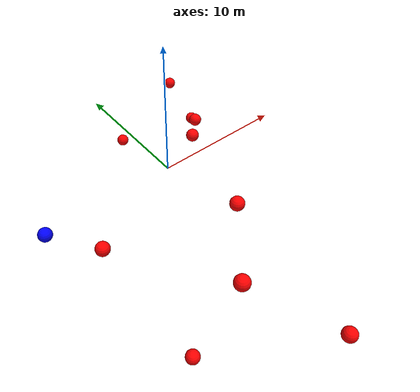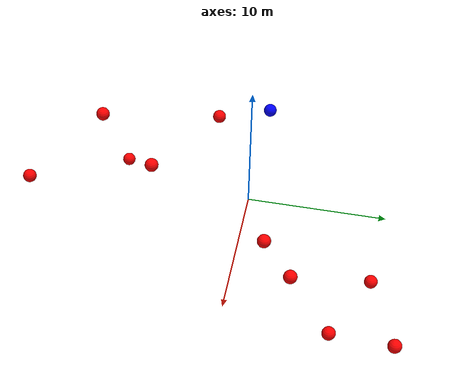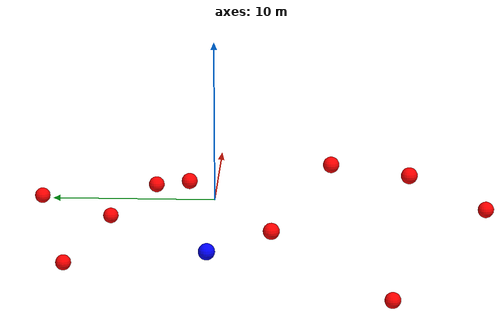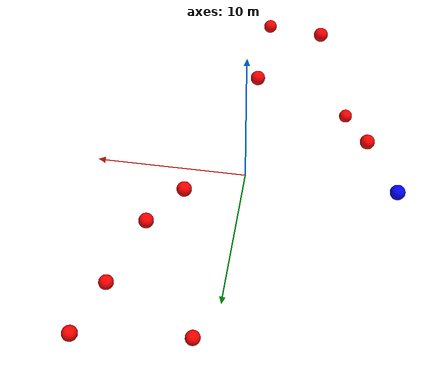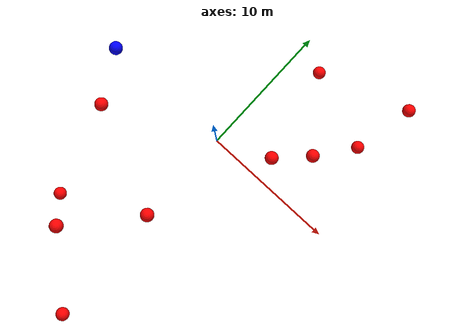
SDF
<?xml version="1.0" ?>
<sdf version="1.8">
    <world name="3d_world">
        <physics name="1ms" type="ode">
            <max_step_size>0.001</max_step_size>
            <real_time_factor>1.0</real_time_factor>
            <real_time_update_rate>1000.0</real_time_update_rate>
        </physics>
        <gravity>0 0 0</gravity>

        <plugin
            filename="gz-sim-physics-system"
            name="gz::sim::v8::systems::Physics">
        </plugin>
        <plugin
            filename="libignition-gazebo-user-commands-system.so"
            name="ignition::gazebo::systems::UserCommands">
        </plugin>
        <plugin
            filename="gz-sim-scene-broadcaster-system"
            name="gz::sim::systems::SceneBroadcaster">
        </plugin>
        <plugin
            filename="gz-sim-sensors-system"
            name="gz::sim::systems::Sensors">
            <render_engine>ogre2</render_engine>
        </plugin>

        <light type="directional" name="sun">
            <cast_shadows>true</cast_shadows>
            <pose>0 0 10 0 0 0</pose>
            <diffuse>0.8 0.8 0.8 1</diffuse>
            <specular>0.2 0.2 0.2 1</specular>
            <attenuation>
                <range>1000</range>
                <constant>0.9</constant>
                <linear>0.01</linear>
                <quadratic>0.001</quadratic>
            </attenuation>
            <direction>-0.5 0.1 -0.9</direction>
        </light>

        <!-- AGENTE -->
        <model name='agente' canonical_link='chassis'>
            <pose relative_to='world'>-10.0 0 0.0 0 0 0</pose>
            <link name='chassis'>
                <pose relative_to='__model__'>0.0 0 0.0 0 0 0</pose>
                <inertial>
                    <mass>1.14395</mass>
                    <inertia>
                        <ixx>0.095329</ixx>
                        <ixy>0</ixy>
                        <ixz>0</ixz>
                        <iyy>0.381317</iyy>
                        <iyz>0</iyz>
                        <izz>0.476646</izz>
                    </inertia>
                </inertial>
                <visual name='visual'>
                    <geometry>
                        <sphere>
                            <radius>0.5</radius>
                        </sphere>
                    </geometry>
                    <material>
                        <ambient>0.0 0.0 1.0 1</ambient>
                        <diffuse>0.0 0.0 1.0 1</diffuse>
                        <specular>0.0 0.0 1.0 1</specular>
                    </material>
                </visual>
                <collision name='collision'>
                    <geometry>
                        <sphere>
                            <radius>0.5</radius>
                        </sphere>
                    </geometry>
                </collision>
                <enable_gravity>false</enable_gravity>
            </link>

            <link name='lidar_link'>
                <pose relative_to='chassis'>0.0 0 0.1 0 0 0</pose>
                <inertial>
                    <mass>0.1</mass>
                    <inertia>
                        <ixx>0.000166667</ixx>
                        <iyy>0.000166667</iyy>
                        <izz>0.000166667</izz>
                    </inertia>
                </inertial>
                <collision name='collision'>
                    <geometry>
                        <cylinder>
                            <radius>0.05</radius>
                            <length>0.1</length>
                        </cylinder>
                    </geometry>
                </collision>
                <visual name='visual'>
                    <geometry>
                        <cylinder>
                            <radius>0.05</radius>
                            <length>0.1</length>
                        </cylinder>
                    </geometry>
                    <material>
                        <ambient>0.0 1.0 0.0 1</ambient>
                        <diffuse>0.0 1.0 0.0 1</diffuse>
                        <specular>0.0 1.0 0.0 1</specular>
                    </material>
                </visual>
                <sensor name="lidar" type="gpu_lidar">
                    <topic>scan</topic>
                    <update_rate>10</update_rate>
                    <lidar>
                        <scan>
                            <horizontal>
                                <samples>5000</samples>
                                <resolution>1</resolution>
                                <min_angle>-3.14159</min_angle>
                                <max_angle>3.14159</max_angle>
                            </horizontal>
                        </scan>
                        <range>
                            <min>0.1</min>
                            <max>10.0</max>
                            <resolution>0.01</resolution>
                        </range>
                    </lidar>
                    <visualize>true</visualize>
                    <always_on>true</always_on>
                    <update_rate>10</update_rate>
                    <pose_frame>lidar</pose_frame>
                </sensor>
                <enable_gravity>false</enable_gravity>
            </link>

            <joint name="lidar_joint" type="fixed">
                <parent>chassis</parent>
                <child>lidar_link</child>
            </joint>

            <plugin
                filename="ignition-gazebo-joint-state-publisher-system"
                name="ignition::gazebo::systems::JointStatePublisher">
            </plugin>
            <plugin
                filename="ignition-gazebo-odometry-publisher-system"
                name="ignition::gazebo::systems::OdometryPublisher">
                <dimensions>3</dimensions>
            </plugin>
            <plugin
                filename="ignition-gazebo-velocity-control-system"
                name="ignition::gazebo::systems::VelocityControl">
                <initial_linear>0.0 0 0</initial_linear>
                <initial_angular>0 0 0.0</initial_angular>
            </plugin>
            <plugin
                filename="libignition-gazebo-pose-publisher-system.so"
                name="ignition::gazebo::systems::PosePublisher">
                <topic>/agente/pose</topic>
                <frame_id>agente</frame_id>
                <update_rate>30</update_rate>
            </plugin>
        </model>

        <!-- OBSTACLE 1 -->
        <model name='obstacle_1' canonical_link='obstacle'>
            <static>false</static>
            <pose relative_to='world'>5.89 4.01 -0.89 0 0 0</pose>
            <link name='obstacle'>
                <pose relative_to='__model__'>0.0 0 0.0 0 0 0</pose>
                <visual name='visual'>
                    <geometry>
                        <sphere>
                            <radius>0.50</radius>
                        </sphere>
                    </geometry>
                    <material>
                        <ambient>1.0 0.0 0.0 1</ambient>
                        <diffuse>1.0 0.0 0.0 1</diffuse>
                        <specular>1.0 0.0 0.0 1</specular>
                    </material>
                </visual>
                <collision name='collision'>
                    <geometry>
                        <sphere>
                            <radius>0.50</radius>
                        </sphere>
                    </geometry>
                </collision>
                <enable_gravity>false</enable_gravity>
            </link>

            <plugin
                filename="ignition-gazebo-velocity-control-system"
                name="ignition::gazebo::systems::VelocityControl">
                <initial_linear>-0.35 -0.72 0.16</initial_linear>
                <initial_angular>0 0 0</initial_angular>
            </plugin>

            <plugin
                filename="ignition-gazebo-odometry-publisher-system"
                name="ignition::gazebo::systems::OdometryPublisher">
                <dimensions>3</dimensions>
            </plugin>
        </model>

        <!-- OBSTACLE 2 -->
        <model name='obstacle_2' canonical_link='obstacle'>
            <static>false</static>
            <pose relative_to='world'>3.78 1.77 0.01 0 0 0</pose>
            <link name='obstacle'>
                <pose relative_to='__model__'>0.0 0 0.0 0 0 0</pose>
                <visual name='visual'>
                    <geometry>
                        <sphere>
                            <radius>0.50</radius>
                        </sphere>
                    </geometry>
                    <material>
                        <ambient>1.0 0.0 0.0 1</ambient>
                        <diffuse>1.0 0.0 0.0 1</diffuse>
                        <specular>1.0 0.0 0.0 1</specular>
                    </material>
                </visual>
                <collision name='collision'>
                    <geometry>
                        <sphere>
                            <radius>0.50</radius>
                        </sphere>
                    </geometry>
                </collision>
                <enable_gravity>false</enable_gravity>
            </link>

            <plugin
                filename="ignition-gazebo-velocity-control-system"
                name="ignition::gazebo::systems::VelocityControl">
                <initial_linear>0.09 -0.31 -0.00</initial_linear>
                <initial_angular>0 0 0</initial_angular>
            </plugin>

            <plugin
                filename="ignition-gazebo-odometry-publisher-system"
                name="ignition::gazebo::systems::OdometryPublisher">
                <dimensions>3</dimensions>
            </plugin>
        </model>

        <!-- OBSTACLE 3 -->
        <model name='obstacle_3' canonical_link='obstacle'>
            <static>false</static>
            <pose relative_to='world'>0.29 -16.77 -0.58 0 0 0</pose>
            <link name='obstacle'>
                <pose relative_to='__model__'>0.0 0 0.0 0 0 0</pose>
                <visual name='visual'>
                    <geometry>
                        <sphere>
                            <radius>0.50</radius>
                        </sphere>
                    </geometry>
                    <material>
                        <ambient>1.0 0.0 0.0 1</ambient>
                        <diffuse>1.0 0.0 0.0 1</diffuse>
                        <specular>1.0 0.0 0.0 1</specular>
                    </material>
                </visual>
                <collision name='collision'>
                    <geometry>
                        <sphere>
                            <radius>0.50</radius>
                        </sphere>
                    </geometry>
                </collision>
                <enable_gravity>false</enable_gravity>
            </link>

            <plugin
                filename="ignition-gazebo-velocity-control-system"
                name="ignition::gazebo::systems::VelocityControl">
                <initial_linear>-0.58 1.91 0.07</initial_linear>
                <initial_angular>0 0 0</initial_angular>
            </plugin>

            <plugin
                filename="ignition-gazebo-odometry-publisher-system"
                name="ignition::gazebo::systems::OdometryPublisher">
                <dimensions>3</dimensions>
            </plugin>
        </model>

        <!-- OBSTACLE 4 -->
        <model name='obstacle_4' canonical_link='obstacle'>
            <static>false</static>
            <pose relative_to='world'>8.99 11.72 -2.69 0 0 0</pose>
            <link name='obstacle'>
                <pose relative_to='__model__'>0.0 0 0.0 0 0 0</pose>
                <visual name='visual'>
                    <geometry>
                        <sphere>
                            <radius>0.50</radius>
                        </sphere>
                    </geometry>
                    <material>
                        <ambient>1.0 0.0 0.0 1</ambient>
                        <diffuse>1.0 0.0 0.0 1</diffuse>
                        <specular>1.0 0.0 0.0 1</specular>
                    </material>
                </visual>
                <collision name='collision'>
                    <geometry>
                        <sphere>
                            <radius>0.50</radius>
                        </sphere>
                    </geometry>
                </collision>
                <enable_gravity>false</enable_gravity>
            </link>

            <plugin
                filename="ignition-gazebo-velocity-control-system"
                name="ignition::gazebo::systems::VelocityControl">
                <initial_linear>-1.31 -1.48 0.34</initial_linear>
                <initial_angular>0 0 0</initial_angular>
            </plugin>

            <plugin
                filename="ignition-gazebo-odometry-publisher-system"
                name="ignition::gazebo::systems::OdometryPublisher">
                <dimensions>3</dimensions>
            </plugin>
        </model>

        <!-- OBSTACLE 5 -->
        <model name='obstacle_5' canonical_link='obstacle'>
            <static>false</static>
            <pose relative_to='world'>-7.84 -3.72 0.58 0 0 0</pose>
            <link name='obstacle'>
                <pose relative_to='__model__'>0.0 0 0.0 0 0 0</pose>
                <visual name='visual'>
                    <geometry>
                        <sphere>
                            <radius>0.50</radius>
                        </sphere>
                    </geometry>
                    <material>
                        <ambient>1.0 0.0 0.0 1</ambient>
                        <diffuse>1.0 0.0 0.0 1</diffuse>
                        <specular>1.0 0.0 0.0 1</specular>
                    </material>
                </visual>
                <collision name='collision'>
                    <geometry>
                        <sphere>
                            <radius>0.50</radius>
                        </sphere>
                    </geometry>
                </collision>
                <enable_gravity>false</enable_gravity>
            </link>

            <plugin
                filename="ignition-gazebo-velocity-control-system"
                name="ignition::gazebo::systems::VelocityControl">
                <initial_linear>1.93 0.52 -0.08</initial_linear>
                <initial_angular>0 0 0</initial_angular>
            </plugin>

            <plugin
                filename="ignition-gazebo-odometry-publisher-system"
                name="ignition::gazebo::systems::OdometryPublisher">
                <dimensions>3</dimensions>
            </plugin>
        </model>

        <!-- OBSTACLE 6 -->
        <model name='obstacle_6' canonical_link='obstacle'>
            <static>false</static>
            <pose relative_to='world'>8.06 7.19 -3.73 0 0 0</pose>
            <link name='obstacle'>
                <pose relative_to='__model__'>0.0 0 0.0 0 0 0</pose>
                <visual name='visual'>
                    <geometry>
                        <sphere>
                            <radius>0.50</radius>
                        </sphere>
                    </geometry>
                    <material>
                        <ambient>1.0 0.0 0.0 1</ambient>
                        <diffuse>1.0 0.0 0.0 1</diffuse>
                        <specular>1.0 0.0 0.0 1</specular>
                    </material>
                </visual>
                <collision name='collision'>
                    <geometry>
                        <sphere>
                            <radius>0.50</radius>
                        </sphere>
                    </geometry>
                </collision>
                <enable_gravity>false</enable_gravity>
            </link>

            <plugin
                filename="ignition-gazebo-velocity-control-system"
                name="ignition::gazebo::systems::VelocityControl">
                <initial_linear>-1.54 -1.13 0.59</initial_linear>
                <initial_angular>0 0 0</initial_angular>
            </plugin>

            <plugin
                filename="ignition-gazebo-odometry-publisher-system"
                name="ignition::gazebo::systems::OdometryPublisher">
                <dimensions>3</dimensions>
            </plugin>
        </model>

        <!-- OBSTACLE 7 -->
        <model name='obstacle_7' canonical_link='obstacle'>
            <static>false</static>
            <pose relative_to='world'>-6.46 -10.98 -4.16 0 0 0</pose>
            <link name='obstacle'>
                <pose relative_to='__model__'>0.0 0 0.0 0 0 0</pose>
                <visual name='visual'>
                    <geometry>
                        <sphere>
                            <radius>0.50</radius>
                        </sphere>
                    </geometry>
                    <material>
                        <ambient>1.0 0.0 0.0 1</ambient>
                        <diffuse>1.0 0.0 0.0 1</diffuse>
                        <specular>1.0 0.0 0.0 1</specular>
                    </material>
                </visual>
                <collision name='collision'>
                    <geometry>
                        <sphere>
                            <radius>0.50</radius>
                        </sphere>
                    </geometry>
                </collision>
                <enable_gravity>false</enable_gravity>
            </link>

            <plugin
                filename="ignition-gazebo-velocity-control-system"
                name="ignition::gazebo::systems::VelocityControl">
                <initial_linear>0.86 1.69 0.64</initial_linear>
                <initial_angular>0 0 0</initial_angular>
            </plugin>

            <plugin
                filename="ignition-gazebo-odometry-publisher-system"
                name="ignition::gazebo::systems::OdometryPublisher">
                <dimensions>3</dimensions>
            </plugin>
        </model>

        <!-- OBSTACLE 8 -->
        <model name='obstacle_8' canonical_link='obstacle'>
            <static>false</static>
            <pose relative_to='world'>-3.88 -11.90 2.87 0 0 0</pose>
            <link name='obstacle'>
                <pose relative_to='__model__'>0.0 0 0.0 0 0 0</pose>
                <visual name='visual'>
                    <geometry>
                        <sphere>
                            <radius>0.50</radius>
                        </sphere>
                    </geometry>
                    <material>
                        <ambient>1.0 0.0 0.0 1</ambient>
                        <diffuse>1.0 0.0 0.0 1</diffuse>
                        <specular>1.0 0.0 0.0 1</specular>
                    </material>
                </visual>
                <collision name='collision'>
                    <geometry>
                        <sphere>
                            <radius>0.50</radius>
                        </sphere>
                    </geometry>
                </collision>
                <enable_gravity>false</enable_gravity>
            </link>

            <plugin
                filename="ignition-gazebo-velocity-control-system"
                name="ignition::gazebo::systems::VelocityControl">
                <initial_linear>0.37 1.91 -0.46</initial_linear>
                <initial_angular>0 0 0</initial_angular>
            </plugin>

            <plugin
                filename="ignition-gazebo-odometry-publisher-system"
                name="ignition::gazebo::systems::OdometryPublisher">
                <dimensions>3</dimensions>
            </plugin>
        </model>

        <!-- OBSTACLE 9 -->
        <model name='obstacle_9' canonical_link='obstacle'>
            <static>false</static>
            <pose relative_to='world'>1.93 9.71 -4.88 0 0 0</pose>
            <link name='obstacle'>
                <pose relative_to='__model__'>0.0 0 0.0 0 0 0</pose>
                <visual name='visual'>
                    <geometry>
                        <sphere>
                            <radius>0.50</radius>
                        </sphere>
                    </geometry>
                    <material>
                        <ambient>1.0 0.0 0.0 1</ambient>
                        <diffuse>1.0 0.0 0.0 1</diffuse>
                        <specular>1.0 0.0 0.0 1</specular>
                    </material>
                </visual>
                <collision name='collision'>
                    <geometry>
                        <sphere>
                            <radius>0.50</radius>
                        </sphere>
                    </geometry>
                </collision>
                <enable_gravity>false</enable_gravity>
            </link>

            <plugin
                filename="ignition-gazebo-velocity-control-system"
                name="ignition::gazebo::systems::VelocityControl">
                <initial_linear>-0.35 -1.76 0.88</initial_linear>
                <initial_angular>0 0 0</initial_angular>
            </plugin>

            <plugin
                filename="ignition-gazebo-odometry-publisher-system"
                name="ignition::gazebo::systems::OdometryPublisher">
                <dimensions>3</dimensions>
            </plugin>
        </model>

        <!-- OBSTACLE 10 -->
        <model name='obstacle_10' canonical_link='obstacle'>
            <static>false</static>
            <pose relative_to='world'>0.14 -7.18 2.28 0 0 0</pose>
            <link name='obstacle'>
                <pose relative_to='__model__'>0.0 0 0.0 0 0 0</pose>
                <visual name='visual'>
                    <geometry>
                        <sphere>
                            <radius>0.50</radius>
                        </sphere>
                    </geometry>
                    <material>
                        <ambient>1.0 0.0 0.0 1</ambient>
                        <diffuse>1.0 0.0 0.0 1</diffuse>
                        <specular>1.0 0.0 0.0 1</specular>
                    </material>
                </visual>
                <collision name='collision'>
                    <geometry>
                        <sphere>
                            <radius>0.50</radius>
                        </sphere>
                    </geometry>
                </collision>
                <enable_gravity>false</enable_gravity>
            </link>

            <plugin
                filename="ignition-gazebo-velocity-control-system"
                name="ignition::gazebo::systems::VelocityControl">
                <initial_linear>0.99 1.07 -0.34</initial_linear>
                <initial_angular>0 0 0</initial_angular>
            </plugin>

            <plugin
                filename="ignition-gazebo-odometry-publisher-system"
                name="ignition::gazebo::systems::OdometryPublisher">
                <dimensions>3</dimensions>
            </plugin>
        </model>

    </world>
</sdf>
